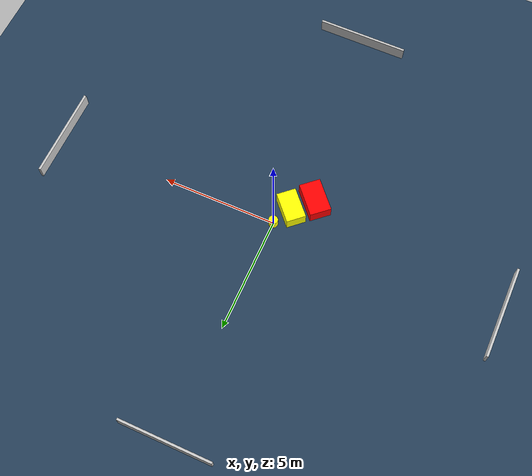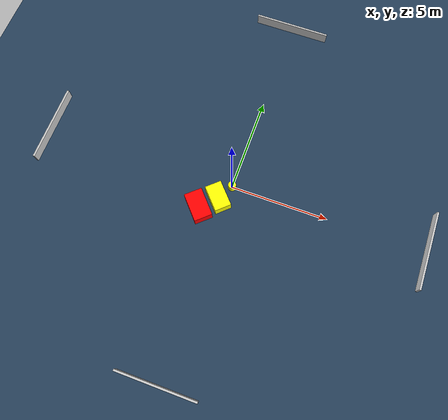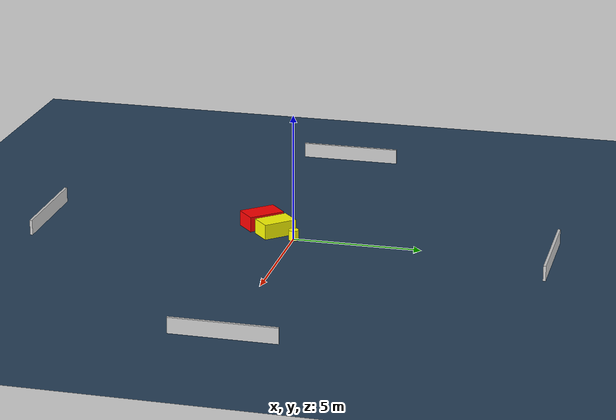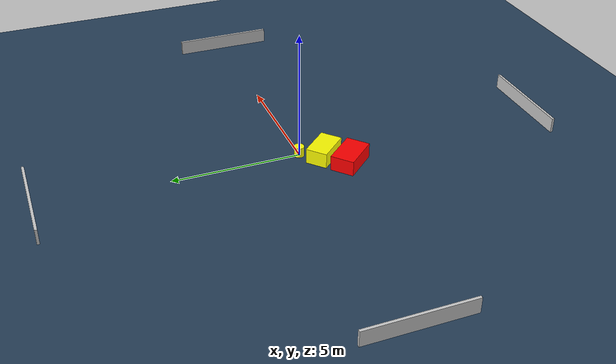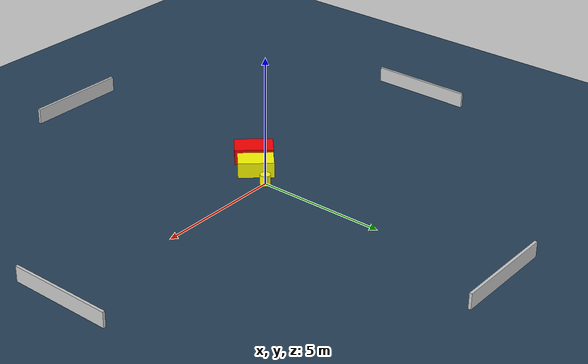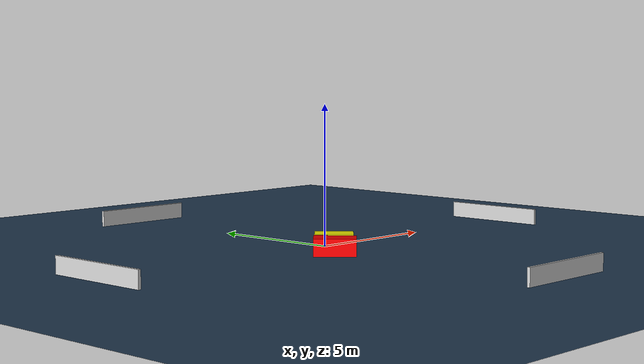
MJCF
<?xml version="1.0" ?>
<mujoco model="generated_environment">
  <option timestep="0.01" integrator="RK4" cone="elliptic"/>
  <default>
    <geom density="1"/>
  </default>
  <asset>
    <texture builtin="gradient" height="3072" name="skybox" rgb1="0.3 0.5 0.7" rgb2="0 0 0" type="skybox" width="512"/>
    <texture builtin="checker" height="300" name="groundplane" rgb1="0.2 0.3 0.4" rgb2="0.1 0.2 0.3" type="2d" width="300"/>
    <material name="groundplane" reflectance="0.2" texrepeat="5 5" texture="groundplane"/>
  </asset>
  <worldbody>
    <light dir="0 0 -1" directional="true" pos="0 0 1.5"/>
    <geom condim="3" friction="0.5 0.005 0.001" material="groundplane" name="floor" pos="0 0 0" size="0 0 0.05" type="plane"/>
    <body name="walls">
      <geom name="wall_1" condim="4" pos="-10.0 0.0 0.3" rgba="0.800000011920929 0.800000011920929 0.800000011920929 1.0" size="0.05 2.0 0.3" type="box"/>
      <geom name="wall_2" condim="4" pos="10.0 0.0 0.3" rgba="0.800000011920929 0.800000011920929 0.800000011920929 1.0" size="0.05 2.0 0.3" type="box"/>
      <geom name="wall_3" condim="4" pos="0.0 -10.0 0.3" rgba="0.800000011920929 0.800000011920929 0.800000011920929 1.0" size="2.0 0.05 0.3" type="box"/>
      <geom name="wall_4" condim="4" pos="0.0 10.0 0.3" rgba="0.800000011920929 0.800000011920929 0.800000011920929 1.0" size="2.0 0.05 0.3" type="box"/>
    </body>
    <body name="robot">
      <joint name="joint_x" type="slide" pos="0 0 0" axis="1 0 0"/>
      <joint name="joint_y" type="slide" pos="0 0 0" axis="0 1 0"/>
      <geom name="robot" type="cylinder" pos="0.0 0.0 0.2" size="0.2 0.2 0.0" mass="5.0" friction="1.0 0.005 0.0001" condim="4" rgba="1.0 1.0 0.0 1.0"/>
    </body>
    <body name="obstacle_1_movable">
      <geom name="obstacle_1_movable" condim="4" pos="-0.4440082972841508 -0.8352886478296205 0.3" euler="0 0 312.5243461101169" friction="0.0 0.005 0.001" rgba="1.0 1.0 0.0 1.0" size="0.6721236138904696 0.4218524184164422 0.3" type="box" mass="0.1"/>
      <joint type="free"/>
    </body>
    <body name="obstacle_2_static">
      <geom name="obstacle_2_static" condim="4" pos="-1.2131740102419453 -1.5883923169073213 0.3" euler="0 0 221.94659587725695" friction="0.0 0.005 0.001" rgba="1.0 0.0 0.0 1.0" size="0.4616285282932674 0.7306153664251744 0.3" type="box"/>
    </body>
  </worldbody>
  <actuator>
    <motor name="actuator_x" joint="joint_x" gear="1" ctrlrange="-1 1"/>
    <motor name="actuator_y" joint="joint_y" gear="1" ctrlrange="-1 1"/>
  </actuator>
</mujoco>
